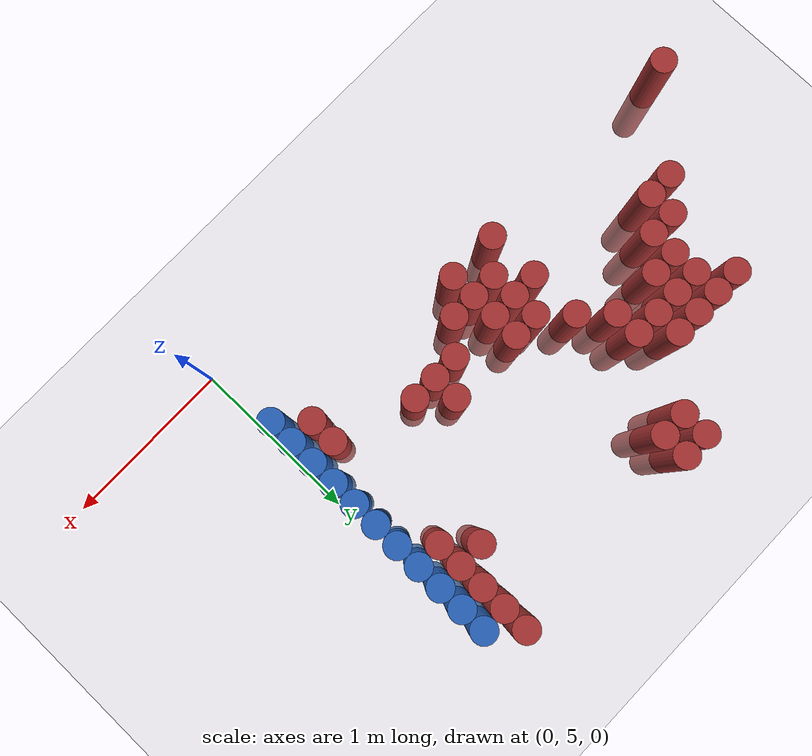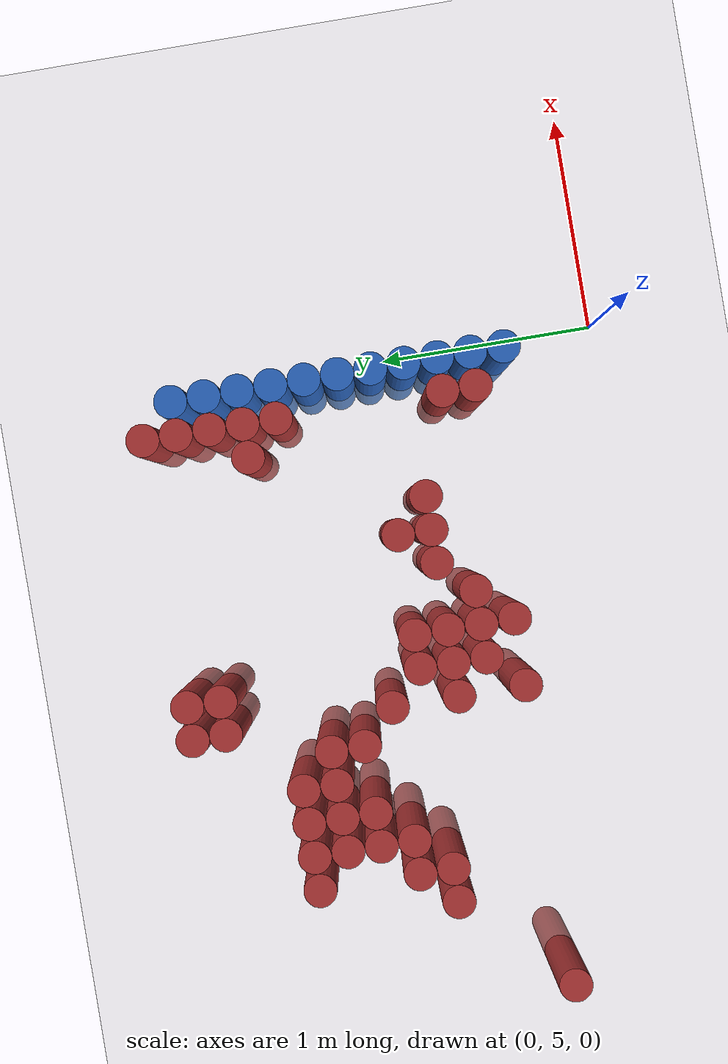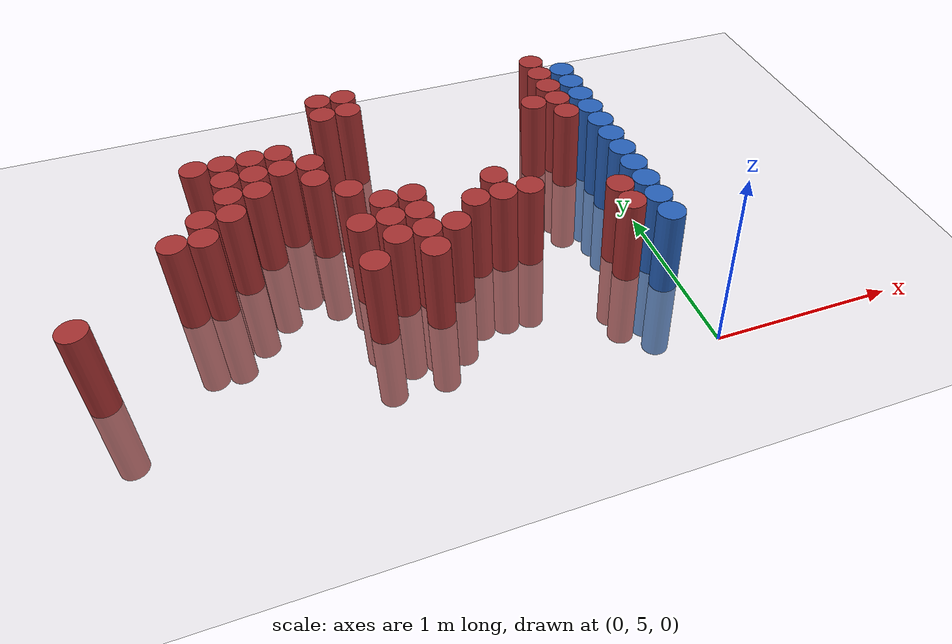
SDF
<sdf version="1.6">
 <world name="default">
  <model name="ground_plane">
   <static>1</static>
   <link name="link">
    <collision name="collision">
     <geometry><plane><normal>0 0 1</normal><size>100 100</size></plane></geometry>
     <surface><friction><ode><mu>100</mu><mu2>50</mu2></ode></friction></surface>
    </collision>
    <visual name="visual">
     <cast_shadows>0</cast_shadows>
     <geometry><plane><normal>0 0 1</normal><size>100 100</size></plane></geometry>
     <material>
      <script><uri>file://media/materials/scripts/gazebo.material</uri><name>Gazebo/Grey</name></script>
     </material>
    </visual>
   </link>
  </model>
  <model name="unit_cylinder_164">
   <static>1</static>
   <pose>-2.925000 5.625000 0.000000 0.000000 0.000000 0.000000</pose>
   <link name="link">
    <inertial>
     <mass>1</mass>
     <inertia><ixx>0.145833</ixx><ixy>0</ixy><ixz>0</ixz><iyy>0.145833</iyy><iyz>0</iyz><izz>0.125</izz></inertia>
    </inertial>
    <collision name="collision">
     <geometry><cylinder><radius>0.075000</radius><length>1</length></cylinder></geometry>
    </collision>
    <visual name="visual">
     <geometry><cylinder><radius>0.075000</radius><length>1</length></cylinder></geometry>
     <material>
      <ambient>0.648000 0.192000 0.192000 1</ambient>
      <diffuse>0.648000 0.192000 0.192000 1</diffuse>
     </material>
     <material>
      <script><name>Gazebo/Grey</name><uri>file://media/materials/scripts/gazebo.material</uri></script>
     </material>
    </visual>
   </link>
  </model>
  <model name="unit_cylinder_165">
   <static>1</static>
   <pose>-2.475000 6.075000 0.000000 0.000000 0.000000 0.000000</pose>
   <link name="link">
    <inertial>
     <mass>1</mass>
     <inertia><ixx>0.145833</ixx><ixy>0</ixy><ixz>0</ixz><iyy>0.145833</iyy><iyz>0</iyz><izz>0.125</izz></inertia>
    </inertial>
    <collision name="collision">
     <geometry><cylinder><radius>0.075000</radius><length>1</length></cylinder></geometry>
    </collision>
    <visual name="visual">
     <geometry><cylinder><radius>0.075000</radius><length>1</length></cylinder></geometry>
     <material>
      <ambient>0.648000 0.192000 0.192000 1</ambient>
      <diffuse>0.648000 0.192000 0.192000 1</diffuse>
     </material>
     <material>
      <script><name>Gazebo/Grey</name><uri>file://media/materials/scripts/gazebo.material</uri></script>
     </material>
    </visual>
   </link>
  </model>
  <model name="unit_cylinder_166">
   <static>1</static>
   <pose>-2.325000 6.075000 0.000000 0.000000 0.000000 0.000000</pose>
   <link name="link">
    <inertial>
     <mass>1</mass>
     <inertia><ixx>0.145833</ixx><ixy>0</ixy><ixz>0</ixz><iyy>0.145833</iyy><iyz>0</iyz><izz>0.125</izz></inertia>
    </inertial>
    <collision name="collision">
     <geometry><cylinder><radius>0.075000</radius><length>1</length></cylinder></geometry>
    </collision>
    <visual name="visual">
     <geometry><cylinder><radius>0.075000</radius><length>1</length></cylinder></geometry>
     <material>
      <ambient>0.648000 0.192000 0.192000 1</ambient>
      <diffuse>0.648000 0.192000 0.192000 1</diffuse>
     </material>
     <material>
      <script><name>Gazebo/Grey</name><uri>file://media/materials/scripts/gazebo.material</uri></script>
     </material>
    </visual>
   </link>
  </model>
  <model name="unit_cylinder_167">
   <static>1</static>
   <pose>-2.325000 6.225000 0.000000 0.000000 0.000000 0.000000</pose>
   <link name="link">
    <inertial>
     <mass>1</mass>
     <inertia><ixx>0.145833</ixx><ixy>0</ixy><ixz>0</ixz><iyy>0.145833</iyy><iyz>0</iyz><izz>0.125</izz></inertia>
    </inertial>
    <collision name="collision">
     <geometry><cylinder><radius>0.075000</radius><length>1</length></cylinder></geometry>
    </collision>
    <visual name="visual">
     <geometry><cylinder><radius>0.075000</radius><length>1</length></cylinder></geometry>
     <material>
      <ambient>0.648000 0.192000 0.192000 1</ambient>
      <diffuse>0.648000 0.192000 0.192000 1</diffuse>
     </material>
     <material>
      <script><name>Gazebo/Grey</name><uri>file://media/materials/scripts/gazebo.material</uri></script>
     </material>
    </visual>
   </link>
  </model>
  <model name="unit_cylinder_168">
   <static>1</static>
   <pose>-2.325000 6.675000 0.000000 0.000000 0.000000 0.000000</pose>
   <link name="link">
    <inertial>
     <mass>1</mass>
     <inertia><ixx>0.145833</ixx><ixy>0</ixy><ixz>0</ixz><iyy>0.145833</iyy><iyz>0</iyz><izz>0.125</izz></inertia>
    </inertial>
    <collision name="collision">
     <geometry><cylinder><radius>0.075000</radius><length>1</length></cylinder></geometry>
    </collision>
    <visual name="visual">
     <geometry><cylinder><radius>0.075000</radius><length>1</length></cylinder></geometry>
     <material>
      <ambient>0.648000 0.192000 0.192000 1</ambient>
      <diffuse>0.648000 0.192000 0.192000 1</diffuse>
     </material>
     <material>
      <script><name>Gazebo/Grey</name><uri>file://media/materials/scripts/gazebo.material</uri></script>
     </material>
    </visual>
   </link>
  </model>
  <model name="unit_cylinder_169">
   <static>1</static>
   <pose>-2.175000 6.225000 0.000000 0.000000 0.000000 0.000000</pose>
   <link name="link">
    <inertial>
     <mass>1</mass>
     <inertia><ixx>0.145833</ixx><ixy>0</ixy><ixz>0</ixz><iyy>0.145833</iyy><iyz>0</iyz><izz>0.125</izz></inertia>
    </inertial>
    <collision name="collision">
     <geometry><cylinder><radius>0.075000</radius><length>1</length></cylinder></geometry>
    </collision>
    <visual name="visual">
     <geometry><cylinder><radius>0.075000</radius><length>1</length></cylinder></geometry>
     <material>
      <ambient>0.648000 0.192000 0.192000 1</ambient>
      <diffuse>0.648000 0.192000 0.192000 1</diffuse>
     </material>
     <material>
      <script><name>Gazebo/Grey</name><uri>file://media/materials/scripts/gazebo.material</uri></script>
     </material>
    </visual>
   </link>
  </model>
  <model name="unit_cylinder_170">
   <static>1</static>
   <pose>-2.175000 6.375000 0.000000 0.000000 0.000000 0.000000</pose>
   <link name="link">
    <inertial>
     <mass>1</mass>
     <inertia><ixx>0.145833</ixx><ixy>0</ixy><ixz>0</ixz><iyy>0.145833</iyy><iyz>0</iyz><izz>0.125</izz></inertia>
    </inertial>
    <collision name="collision">
     <geometry><cylinder><radius>0.075000</radius><length>1</length></cylinder></geometry>
    </collision>
    <visual name="visual">
     <geometry><cylinder><radius>0.075000</radius><length>1</length></cylinder></geometry>
     <material>
      <ambient>0.648000 0.192000 0.192000 1</ambient>
      <diffuse>0.648000 0.192000 0.192000 1</diffuse>
     </material>
     <material>
      <script><name>Gazebo/Grey</name><uri>file://media/materials/scripts/gazebo.material</uri></script>
     </material>
    </visual>
   </link>
  </model>
  <model name="unit_cylinder_171">
   <static>1</static>
   <pose>-2.175000 6.525000 0.000000 0.000000 0.000000 0.000000</pose>
   <link name="link">
    <inertial>
     <mass>1</mass>
     <inertia><ixx>0.145833</ixx><ixy>0</ixy><ixz>0</ixz><iyy>0.145833</iyy><iyz>0</iyz><izz>0.125</izz></inertia>
    </inertial>
    <collision name="collision">
     <geometry><cylinder><radius>0.075000</radius><length>1</length></cylinder></geometry>
    </collision>
    <visual name="visual">
     <geometry><cylinder><radius>0.075000</radius><length>1</length></cylinder></geometry>
     <material>
      <ambient>0.648000 0.192000 0.192000 1</ambient>
      <diffuse>0.648000 0.192000 0.192000 1</diffuse>
     </material>
     <material>
      <script><name>Gazebo/Grey</name><uri>file://media/materials/scripts/gazebo.material</uri></script>
     </material>
    </visual>
   </link>
  </model>
  <model name="unit_cylinder_172">
   <static>1</static>
   <pose>-2.175000 6.675000 0.000000 0.000000 0.000000 0.000000</pose>
   <link name="link">
    <inertial>
     <mass>1</mass>
     <inertia><ixx>0.145833</ixx><ixy>0</ixy><ixz>0</ixz><iyy>0.145833</iyy><iyz>0</iyz><izz>0.125</izz></inertia>
    </inertial>
    <collision name="collision">
     <geometry><cylinder><radius>0.075000</radius><length>1</length></cylinder></geometry>
    </collision>
    <visual name="visual">
     <geometry><cylinder><radius>0.075000</radius><length>1</length></cylinder></geometry>
     <material>
      <ambient>0.648000 0.192000 0.192000 1</ambient>
      <diffuse>0.648000 0.192000 0.192000 1</diffuse>
     </material>
     <material>
      <script><name>Gazebo/Grey</name><uri>file://media/materials/scripts/gazebo.material</uri></script>
     </material>
    </visual>
   </link>
  </model>
  <model name="unit_cylinder_173">
   <static>1</static>
   <pose>-2.025000 6.375000 0.000000 0.000000 0.000000 0.000000</pose>
   <link name="link">
    <inertial>
     <mass>1</mass>
     <inertia><ixx>0.145833</ixx><ixy>0</ixy><ixz>0</ixz><iyy>0.145833</iyy><iyz>0</iyz><izz>0.125</izz></inertia>
    </inertial>
    <collision name="collision">
     <geometry><cylinder><radius>0.075000</radius><length>1</length></cylinder></geometry>
    </collision>
    <visual name="visual">
     <geometry><cylinder><radius>0.075000</radius><length>1</length></cylinder></geometry>
     <material>
      <ambient>0.648000 0.192000 0.192000 1</ambient>
      <diffuse>0.648000 0.192000 0.192000 1</diffuse>
     </material>
     <material>
      <script><name>Gazebo/Grey</name><uri>file://media/materials/scripts/gazebo.material</uri></script>
     </material>
    </visual>
   </link>
  </model>
  <model name="unit_cylinder_174">
   <static>1</static>
   <pose>-2.025000 6.525000 0.000000 0.000000 0.000000 0.000000</pose>
   <link name="link">
    <inertial>
     <mass>1</mass>
     <inertia><ixx>0.145833</ixx><ixy>0</ixy><ixz>0</ixz><iyy>0.145833</iyy><iyz>0</iyz><izz>0.125</izz></inertia>
    </inertial>
    <collision name="collision">
     <geometry><cylinder><radius>0.075000</radius><length>1</length></cylinder></geometry>
    </collision>
    <visual name="visual">
     <geometry><cylinder><radius>0.075000</radius><length>1</length></cylinder></geometry>
     <material>
      <ambient>0.648000 0.192000 0.192000 1</ambient>
      <diffuse>0.648000 0.192000 0.192000 1</diffuse>
     </material>
     <material>
      <script><name>Gazebo/Grey</name><uri>file://media/materials/scripts/gazebo.material</uri></script>
     </material>
    </visual>
   </link>
  </model>
  <model name="unit_cylinder_175">
   <static>1</static>
   <pose>-2.025000 6.675000 0.000000 0.000000 0.000000 0.000000</pose>
   <link name="link">
    <inertial>
     <mass>1</mass>
     <inertia><ixx>0.145833</ixx><ixy>0</ixy><ixz>0</ixz><iyy>0.145833</iyy><iyz>0</iyz><izz>0.125</izz></inertia>
    </inertial>
    <collision name="collision">
     <geometry><cylinder><radius>0.075000</radius><length>1</length></cylinder></geometry>
    </collision>
    <visual name="visual">
     <geometry><cylinder><radius>0.075000</radius><length>1</length></cylinder></geometry>
     <material>
      <ambient>0.648000 0.192000 0.192000 1</ambient>
      <diffuse>0.648000 0.192000 0.192000 1</diffuse>
     </material>
     <material>
      <script><name>Gazebo/Grey</name><uri>file://media/materials/scripts/gazebo.material</uri></script>
     </material>
    </visual>
   </link>
  </model>
  <model name="unit_cylinder_176">
   <static>1</static>
   <pose>-1.875000 6.525000 0.000000 0.000000 0.000000 0.000000</pose>
   <link name="link">
    <inertial>
     <mass>1</mass>
     <inertia><ixx>0.145833</ixx><ixy>0</ixy><ixz>0</ixz><iyy>0.145833</iyy><iyz>0</iyz><izz>0.125</izz></inertia>
    </inertial>
    <collision name="collision">
     <geometry><cylinder><radius>0.075000</radius><length>1</length></cylinder></geometry>
    </collision>
    <visual name="visual">
     <geometry><cylinder><radius>0.075000</radius><length>1</length></cylinder></geometry>
     <material>
      <ambient>0.648000 0.192000 0.192000 1</ambient>
      <diffuse>0.648000 0.192000 0.192000 1</diffuse>
     </material>
     <material>
      <script><name>Gazebo/Grey</name><uri>file://media/materials/scripts/gazebo.material</uri></script>
     </material>
    </visual>
   </link>
  </model>
  <model name="unit_cylinder_177">
   <static>1</static>
   <pose>-1.875000 6.675000 0.000000 0.000000 0.000000 0.000000</pose>
   <link name="link">
    <inertial>
     <mass>1</mass>
     <inertia><ixx>0.145833</ixx><ixy>0</ixy><ixz>0</ixz><iyy>0.145833</iyy><iyz>0</iyz><izz>0.125</izz></inertia>
    </inertial>
    <collision name="collision">
     <geometry><cylinder><radius>0.075000</radius><length>1</length></cylinder></geometry>
    </collision>
    <visual name="visual">
     <geometry><cylinder><radius>0.075000</radius><length>1</length></cylinder></geometry>
     <material>
      <ambient>0.648000 0.192000 0.192000 1</ambient>
      <diffuse>0.648000 0.192000 0.192000 1</diffuse>
     </material>
     <material>
      <script><name>Gazebo/Grey</name><uri>file://media/materials/scripts/gazebo.material</uri></script>
     </material>
    </visual>
   </link>
  </model>
  <model name="unit_cylinder_180">
   <static>1</static>
   <pose>-1.725000 6.375000 0.000000 0.000000 0.000000 0.000000</pose>
   <link name="link">
    <inertial>
     <mass>1</mass>
     <inertia><ixx>0.145833</ixx><ixy>0</ixy><ixz>0</ixz><iyy>0.145833</iyy><iyz>0</iyz><izz>0.125</izz></inertia>
    </inertial>
    <collision name="collision">
     <geometry><cylinder><radius>0.075000</radius><length>1</length></cylinder></geometry>
    </collision>
    <visual name="visual">
     <geometry><cylinder><radius>0.075000</radius><length>1</length></cylinder></geometry>
     <material>
      <ambient>0.648000 0.192000 0.192000 1</ambient>
      <diffuse>0.648000 0.192000 0.192000 1</diffuse>
     </material>
     <material>
      <script><name>Gazebo/Grey</name><uri>file://media/materials/scripts/gazebo.material</uri></script>
     </material>
    </visual>
   </link>
  </model>
  <model name="unit_cylinder_181">
   <static>1</static>
   <pose>-1.725000 6.525000 0.000000 0.000000 0.000000 0.000000</pose>
   <link name="link">
    <inertial>
     <mass>1</mass>
     <inertia><ixx>0.145833</ixx><ixy>0</ixy><ixz>0</ixz><iyy>0.145833</iyy><iyz>0</iyz><izz>0.125</izz></inertia>
    </inertial>
    <collision name="collision">
     <geometry><cylinder><radius>0.075000</radius><length>1</length></cylinder></geometry>
    </collision>
    <visual name="visual">
     <geometry><cylinder><radius>0.075000</radius><length>1</length></cylinder></geometry>
     <material>
      <ambient>0.648000 0.192000 0.192000 1</ambient>
      <diffuse>0.648000 0.192000 0.192000 1</diffuse>
     </material>
     <material>
      <script><name>Gazebo/Grey</name><uri>file://media/materials/scripts/gazebo.material</uri></script>
     </material>
    </visual>
   </link>
  </model>
  <model name="unit_cylinder_184">
   <static>1</static>
   <pose>-1.575000 5.625000 0.000000 0.000000 0.000000 0.000000</pose>
   <link name="link">
    <inertial>
     <mass>1</mass>
     <inertia><ixx>0.145833</ixx><ixy>0</ixy><ixz>0</ixz><iyy>0.145833</iyy><iyz>0</iyz><izz>0.125</izz></inertia>
    </inertial>
    <collision name="collision">
     <geometry><cylinder><radius>0.075000</radius><length>1</length></cylinder></geometry>
    </collision>
    <visual name="visual">
     <geometry><cylinder><radius>0.075000</radius><length>1</length></cylinder></geometry>
     <material>
      <ambient>0.648000 0.192000 0.192000 1</ambient>
      <diffuse>0.648000 0.192000 0.192000 1</diffuse>
     </material>
     <material>
      <script><name>Gazebo/Grey</name><uri>file://media/materials/scripts/gazebo.material</uri></script>
     </material>
    </visual>
   </link>
  </model>
  <model name="unit_cylinder_185">
   <static>1</static>
   <pose>-1.575000 5.925000 0.000000 0.000000 0.000000 0.000000</pose>
   <link name="link">
    <inertial>
     <mass>1</mass>
     <inertia><ixx>0.145833</ixx><ixy>0</ixy><ixz>0</ixz><iyy>0.145833</iyy><iyz>0</iyz><izz>0.125</izz></inertia>
    </inertial>
    <collision name="collision">
     <geometry><cylinder><radius>0.075000</radius><length>1</length></cylinder></geometry>
    </collision>
    <visual name="visual">
     <geometry><cylinder><radius>0.075000</radius><length>1</length></cylinder></geometry>
     <material>
      <ambient>0.648000 0.192000 0.192000 1</ambient>
      <diffuse>0.648000 0.192000 0.192000 1</diffuse>
     </material>
     <material>
      <script><name>Gazebo/Grey</name><uri>file://media/materials/scripts/gazebo.material</uri></script>
     </material>
    </visual>
   </link>
  </model>
  <model name="unit_cylinder_186">
   <static>1</static>
   <pose>-1.575000 6.225000 0.000000 0.000000 0.000000 0.000000</pose>
   <link name="link">
    <inertial>
     <mass>1</mass>
     <inertia><ixx>0.145833</ixx><ixy>0</ixy><ixz>0</ixz><iyy>0.145833</iyy><iyz>0</iyz><izz>0.125</izz></inertia>
    </inertial>
    <collision name="collision">
     <geometry><cylinder><radius>0.075000</radius><length>1</length></cylinder></geometry>
    </collision>
    <visual name="visual">
     <geometry><cylinder><radius>0.075000</radius><length>1</length></cylinder></geometry>
     <material>
      <ambient>0.648000 0.192000 0.192000 1</ambient>
      <diffuse>0.648000 0.192000 0.192000 1</diffuse>
     </material>
     <material>
      <script><name>Gazebo/Grey</name><uri>file://media/materials/scripts/gazebo.material</uri></script>
     </material>
    </visual>
   </link>
  </model>
  <model name="unit_cylinder_187">
   <static>1</static>
   <pose>-1.575000 6.975000 0.000000 0.000000 0.000000 0.000000</pose>
   <link name="link">
    <inertial>
     <mass>1</mass>
     <inertia><ixx>0.145833</ixx><ixy>0</ixy><ixz>0</ixz><iyy>0.145833</iyy><iyz>0</iyz><izz>0.125</izz></inertia>
    </inertial>
    <collision name="collision">
     <geometry><cylinder><radius>0.075000</radius><length>1</length></cylinder></geometry>
    </collision>
    <visual name="visual">
     <geometry><cylinder><radius>0.075000</radius><length>1</length></cylinder></geometry>
     <material>
      <ambient>0.648000 0.192000 0.192000 1</ambient>
      <diffuse>0.648000 0.192000 0.192000 1</diffuse>
     </material>
     <material>
      <script><name>Gazebo/Grey</name><uri>file://media/materials/scripts/gazebo.material</uri></script>
     </material>
    </visual>
   </link>
  </model>
  <model name="unit_cylinder_188">
   <static>1</static>
   <pose>-1.575000 7.125000 0.000000 0.000000 0.000000 0.000000</pose>
   <link name="link">
    <inertial>
     <mass>1</mass>
     <inertia><ixx>0.145833</ixx><ixy>0</ixy><ixz>0</ixz><iyy>0.145833</iyy><iyz>0</iyz><izz>0.125</izz></inertia>
    </inertial>
    <collision name="collision">
     <geometry><cylinder><radius>0.075000</radius><length>1</length></cylinder></geometry>
    </collision>
    <visual name="visual">
     <geometry><cylinder><radius>0.075000</radius><length>1</length></cylinder></geometry>
     <material>
      <ambient>0.648000 0.192000 0.192000 1</ambient>
      <diffuse>0.648000 0.192000 0.192000 1</diffuse>
     </material>
     <material>
      <script><name>Gazebo/Grey</name><uri>file://media/materials/scripts/gazebo.material</uri></script>
     </material>
    </visual>
   </link>
  </model>
  <model name="unit_cylinder_194">
   <static>1</static>
   <pose>-1.425000 5.775000 0.000000 0.000000 0.000000 0.000000</pose>
   <link name="link">
    <inertial>
     <mass>1</mass>
     <inertia><ixx>0.145833</ixx><ixy>0</ixy><ixz>0</ixz><iyy>0.145833</iyy><iyz>0</iyz><izz>0.125</izz></inertia>
    </inertial>
    <collision name="collision">
     <geometry><cylinder><radius>0.075000</radius><length>1</length></cylinder></geometry>
    </collision>
    <visual name="visual">
     <geometry><cylinder><radius>0.075000</radius><length>1</length></cylinder></geometry>
     <material>
      <ambient>0.648000 0.192000 0.192000 1</ambient>
      <diffuse>0.648000 0.192000 0.192000 1</diffuse>
     </material>
     <material>
      <script><name>Gazebo/Grey</name><uri>file://media/materials/scripts/gazebo.material</uri></script>
     </material>
    </visual>
   </link>
  </model>
  <model name="unit_cylinder_195">
   <static>1</static>
   <pose>-1.425000 5.925000 0.000000 0.000000 0.000000 0.000000</pose>
   <link name="link">
    <inertial>
     <mass>1</mass>
     <inertia><ixx>0.145833</ixx><ixy>0</ixy><ixz>0</ixz><iyy>0.145833</iyy><iyz>0</iyz><izz>0.125</izz></inertia>
    </inertial>
    <collision name="collision">
     <geometry><cylinder><radius>0.075000</radius><length>1</length></cylinder></geometry>
    </collision>
    <visual name="visual">
     <geometry><cylinder><radius>0.075000</radius><length>1</length></cylinder></geometry>
     <material>
      <ambient>0.648000 0.192000 0.192000 1</ambient>
      <diffuse>0.648000 0.192000 0.192000 1</diffuse>
     </material>
     <material>
      <script><name>Gazebo/Grey</name><uri>file://media/materials/scripts/gazebo.material</uri></script>
     </material>
    </visual>
   </link>
  </model>
  <model name="unit_cylinder_196">
   <static>1</static>
   <pose>-1.425000 6.075000 0.000000 0.000000 0.000000 0.000000</pose>
   <link name="link">
    <inertial>
     <mass>1</mass>
     <inertia><ixx>0.145833</ixx><ixy>0</ixy><ixz>0</ixz><iyy>0.145833</iyy><iyz>0</iyz><izz>0.125</izz></inertia>
    </inertial>
    <collision name="collision">
     <geometry><cylinder><radius>0.075000</radius><length>1</length></cylinder></geometry>
    </collision>
    <visual name="visual">
     <geometry><cylinder><radius>0.075000</radius><length>1</length></cylinder></geometry>
     <material>
      <ambient>0.648000 0.192000 0.192000 1</ambient>
      <diffuse>0.648000 0.192000 0.192000 1</diffuse>
     </material>
     <material>
      <script><name>Gazebo/Grey</name><uri>file://media/materials/scripts/gazebo.material</uri></script>
     </material>
    </visual>
   </link>
  </model>
  <model name="unit_cylinder_197">
   <static>1</static>
   <pose>-1.425000 6.975000 0.000000 0.000000 0.000000 0.000000</pose>
   <link name="link">
    <inertial>
     <mass>1</mass>
     <inertia><ixx>0.145833</ixx><ixy>0</ixy><ixz>0</ixz><iyy>0.145833</iyy><iyz>0</iyz><izz>0.125</izz></inertia>
    </inertial>
    <collision name="collision">
     <geometry><cylinder><radius>0.075000</radius><length>1</length></cylinder></geometry>
    </collision>
    <visual name="visual">
     <geometry><cylinder><radius>0.075000</radius><length>1</length></cylinder></geometry>
     <material>
      <ambient>0.648000 0.192000 0.192000 1</ambient>
      <diffuse>0.648000 0.192000 0.192000 1</diffuse>
     </material>
     <material>
      <script><name>Gazebo/Grey</name><uri>file://media/materials/scripts/gazebo.material</uri></script>
     </material>
    </visual>
   </link>
  </model>
  <model name="unit_cylinder_198">
   <static>1</static>
   <pose>-1.425000 7.125000 0.000000 0.000000 0.000000 0.000000</pose>
   <link name="link">
    <inertial>
     <mass>1</mass>
     <inertia><ixx>0.145833</ixx><ixy>0</ixy><ixz>0</ixz><iyy>0.145833</iyy><iyz>0</iyz><izz>0.125</izz></inertia>
    </inertial>
    <collision name="collision">
     <geometry><cylinder><radius>0.075000</radius><length>1</length></cylinder></geometry>
    </collision>
    <visual name="visual">
     <geometry><cylinder><radius>0.075000</radius><length>1</length></cylinder></geometry>
     <material>
      <ambient>0.648000 0.192000 0.192000 1</ambient>
      <diffuse>0.648000 0.192000 0.192000 1</diffuse>
     </material>
     <material>
      <script><name>Gazebo/Grey</name><uri>file://media/materials/scripts/gazebo.material</uri></script>
     </material>
    </visual>
   </link>
  </model>
  <model name="unit_cylinder_202">
   <static>1</static>
   <pose>-1.275000 5.625000 0.000000 0.000000 0.000000 0.000000</pose>
   <link name="link">
    <inertial>
     <mass>1</mass>
     <inertia><ixx>0.145833</ixx><ixy>0</ixy><ixz>0</ixz><iyy>0.145833</iyy><iyz>0</iyz><izz>0.125</izz></inertia>
    </inertial>
    <collision name="collision">
     <geometry><cylinder><radius>0.075000</radius><length>1</length></cylinder></geometry>
    </collision>
    <visual name="visual">
     <geometry><cylinder><radius>0.075000</radius><length>1</length></cylinder></geometry>
     <material>
      <ambient>0.648000 0.192000 0.192000 1</ambient>
      <diffuse>0.648000 0.192000 0.192000 1</diffuse>
     </material>
     <material>
      <script><name>Gazebo/Grey</name><uri>file://media/materials/scripts/gazebo.material</uri></script>
     </material>
    </visual>
   </link>
  </model>
  <model name="unit_cylinder_203">
   <static>1</static>
   <pose>-1.275000 5.775000 0.000000 0.000000 0.000000 0.000000</pose>
   <link name="link">
    <inertial>
     <mass>1</mass>
     <inertia><ixx>0.145833</ixx><ixy>0</ixy><ixz>0</ixz><iyy>0.145833</iyy><iyz>0</iyz><izz>0.125</izz></inertia>
    </inertial>
    <collision name="collision">
     <geometry><cylinder><radius>0.075000</radius><length>1</length></cylinder></geometry>
    </collision>
    <visual name="visual">
     <geometry><cylinder><radius>0.075000</radius><length>1</length></cylinder></geometry>
     <material>
      <ambient>0.648000 0.192000 0.192000 1</ambient>
      <diffuse>0.648000 0.192000 0.192000 1</diffuse>
     </material>
     <material>
      <script><name>Gazebo/Grey</name><uri>file://media/materials/scripts/gazebo.material</uri></script>
     </material>
    </visual>
   </link>
  </model>
  <model name="unit_cylinder_204">
   <static>1</static>
   <pose>-1.275000 5.925000 0.000000 0.000000 0.000000 0.000000</pose>
   <link name="link">
    <inertial>
     <mass>1</mass>
     <inertia><ixx>0.145833</ixx><ixy>0</ixy><ixz>0</ixz><iyy>0.145833</iyy><iyz>0</iyz><izz>0.125</izz></inertia>
    </inertial>
    <collision name="collision">
     <geometry><cylinder><radius>0.075000</radius><length>1</length></cylinder></geometry>
    </collision>
    <visual name="visual">
     <geometry><cylinder><radius>0.075000</radius><length>1</length></cylinder></geometry>
     <material>
      <ambient>0.648000 0.192000 0.192000 1</ambient>
      <diffuse>0.648000 0.192000 0.192000 1</diffuse>
     </material>
     <material>
      <script><name>Gazebo/Grey</name><uri>file://media/materials/scripts/gazebo.material</uri></script>
     </material>
    </visual>
   </link>
  </model>
  <model name="unit_cylinder_205">
   <static>1</static>
   <pose>-1.275000 6.075000 0.000000 0.000000 0.000000 0.000000</pose>
   <link name="link">
    <inertial>
     <mass>1</mass>
     <inertia><ixx>0.145833</ixx><ixy>0</ixy><ixz>0</ixz><iyy>0.145833</iyy><iyz>0</iyz><izz>0.125</izz></inertia>
    </inertial>
    <collision name="collision">
     <geometry><cylinder><radius>0.075000</radius><length>1</length></cylinder></geometry>
    </collision>
    <visual name="visual">
     <geometry><cylinder><radius>0.075000</radius><length>1</length></cylinder></geometry>
     <material>
      <ambient>0.648000 0.192000 0.192000 1</ambient>
      <diffuse>0.648000 0.192000 0.192000 1</diffuse>
     </material>
     <material>
      <script><name>Gazebo/Grey</name><uri>file://media/materials/scripts/gazebo.material</uri></script>
     </material>
    </visual>
   </link>
  </model>
  <model name="unit_cylinder_210">
   <static>1</static>
   <pose>-1.125000 5.775000 0.000000 0.000000 0.000000 0.000000</pose>
   <link name="link">
    <inertial>
     <mass>1</mass>
     <inertia><ixx>0.145833</ixx><ixy>0</ixy><ixz>0</ixz><iyy>0.145833</iyy><iyz>0</iyz><izz>0.125</izz></inertia>
    </inertial>
    <collision name="collision">
     <geometry><cylinder><radius>0.075000</radius><length>1</length></cylinder></geometry>
    </collision>
    <visual name="visual">
     <geometry><cylinder><radius>0.075000</radius><length>1</length></cylinder></geometry>
     <material>
      <ambient>0.648000 0.192000 0.192000 1</ambient>
      <diffuse>0.648000 0.192000 0.192000 1</diffuse>
     </material>
     <material>
      <script><name>Gazebo/Grey</name><uri>file://media/materials/scripts/gazebo.material</uri></script>
     </material>
    </visual>
   </link>
  </model>
  <model name="unit_cylinder_215">
   <static>1</static>
   <pose>-0.975000 5.925000 0.000000 0.000000 0.000000 0.000000</pose>
   <link name="link">
    <inertial>
     <mass>1</mass>
     <inertia><ixx>0.145833</ixx><ixy>0</ixy><ixz>0</ixz><iyy>0.145833</iyy><iyz>0</iyz><izz>0.125</izz></inertia>
    </inertial>
    <collision name="collision">
     <geometry><cylinder><radius>0.075000</radius><length>1</length></cylinder></geometry>
    </collision>
    <visual name="visual">
     <geometry><cylinder><radius>0.075000</radius><length>1</length></cylinder></geometry>
     <material>
      <ambient>0.648000 0.192000 0.192000 1</ambient>
      <diffuse>0.648000 0.192000 0.192000 1</diffuse>
     </material>
     <material>
      <script><name>Gazebo/Grey</name><uri>file://media/materials/scripts/gazebo.material</uri></script>
     </material>
    </visual>
   </link>
  </model>
  <model name="unit_cylinder_219">
   <static>1</static>
   <pose>-0.825000 5.925000 0.000000 0.000000 0.000000 0.000000</pose>
   <link name="link">
    <inertial>
     <mass>1</mass>
     <inertia><ixx>0.145833</ixx><ixy>0</ixy><ixz>0</ixz><iyy>0.145833</iyy><iyz>0</iyz><izz>0.125</izz></inertia>
    </inertial>
    <collision name="collision">
     <geometry><cylinder><radius>0.075000</radius><length>1</length></cylinder></geometry>
    </collision>
    <visual name="visual">
     <geometry><cylinder><radius>0.075000</radius><length>1</length></cylinder></geometry>
     <material>
      <ambient>0.648000 0.192000 0.192000 1</ambient>
      <diffuse>0.648000 0.192000 0.192000 1</diffuse>
     </material>
     <material>
      <script><name>Gazebo/Grey</name><uri>file://media/materials/scripts/gazebo.material</uri></script>
     </material>
    </visual>
   </link>
  </model>
  <model name="unit_cylinder_220">
   <static>1</static>
   <pose>-0.825000 6.075000 0.000000 0.000000 0.000000 0.000000</pose>
   <link name="link">
    <inertial>
     <mass>1</mass>
     <inertia><ixx>0.145833</ixx><ixy>0</ixy><ixz>0</ixz><iyy>0.145833</iyy><iyz>0</iyz><izz>0.125</izz></inertia>
    </inertial>
    <collision name="collision">
     <geometry><cylinder><radius>0.075000</radius><length>1</length></cylinder></geometry>
    </collision>
    <visual name="visual">
     <geometry><cylinder><radius>0.075000</radius><length>1</length></cylinder></geometry>
     <material>
      <ambient>0.648000 0.192000 0.192000 1</ambient>
      <diffuse>0.648000 0.192000 0.192000 1</diffuse>
     </material>
     <material>
      <script><name>Gazebo/Grey</name><uri>file://media/materials/scripts/gazebo.material</uri></script>
     </material>
    </visual>
   </link>
  </model>
  <model name="unit_cylinder_221">
   <static>1</static>
   <pose>-0.675000 5.925000 0.000000 0.000000 0.000000 0.000000</pose>
   <link name="link">
    <inertial>
     <mass>1</mass>
     <inertia><ixx>0.145833</ixx><ixy>0</ixy><ixz>0</ixz><iyy>0.145833</iyy><iyz>0</iyz><izz>0.125</izz></inertia>
    </inertial>
    <collision name="collision">
     <geometry><cylinder><radius>0.075000</radius><length>1</length></cylinder></geometry>
    </collision>
    <visual name="visual">
     <geometry><cylinder><radius>0.075000</radius><length>1</length></cylinder></geometry>
     <material>
      <ambient>0.648000 0.192000 0.192000 1</ambient>
      <diffuse>0.648000 0.192000 0.192000 1</diffuse>
     </material>
     <material>
      <script><name>Gazebo/Grey</name><uri>file://media/materials/scripts/gazebo.material</uri></script>
     </material>
    </visual>
   </link>
  </model>
  <model name="unit_cylinder_222">
   <static>1</static>
   <pose>-0.375000 6.675000 0.000000 0.000000 0.000000 0.000000</pose>
   <link name="link">
    <inertial>
     <mass>1</mass>
     <inertia><ixx>0.145833</ixx><ixy>0</ixy><ixz>0</ixz><iyy>0.145833</iyy><iyz>0</iyz><izz>0.125</izz></inertia>
    </inertial>
    <collision name="collision">
     <geometry><cylinder><radius>0.075000</radius><length>1</length></cylinder></geometry>
    </collision>
    <visual name="visual">
     <geometry><cylinder><radius>0.075000</radius><length>1</length></cylinder></geometry>
     <material>
      <ambient>0.648000 0.192000 0.192000 1</ambient>
      <diffuse>0.648000 0.192000 0.192000 1</diffuse>
     </material>
     <material>
      <script><name>Gazebo/Grey</name><uri>file://media/materials/scripts/gazebo.material</uri></script>
     </material>
    </visual>
   </link>
  </model>
  <model name="unit_cylinder_224">
   <static>1</static>
   <pose>-0.225000 5.625000 0.000000 0.000000 0.000000 0.000000</pose>
   <link name="link">
    <inertial>
     <mass>1</mass>
     <inertia><ixx>0.145833</ixx><ixy>0</ixy><ixz>0</ixz><iyy>0.145833</iyy><iyz>0</iyz><izz>0.125</izz></inertia>
    </inertial>
    <collision name="collision">
     <geometry><cylinder><radius>0.075000</radius><length>1</length></cylinder></geometry>
    </collision>
    <visual name="visual">
     <geometry><cylinder><radius>0.075000</radius><length>1</length></cylinder></geometry>
     <material>
      <ambient>0.648000 0.192000 0.192000 1</ambient>
      <diffuse>0.648000 0.192000 0.192000 1</diffuse>
     </material>
     <material>
      <script><name>Gazebo/Grey</name><uri>file://media/materials/scripts/gazebo.material</uri></script>
     </material>
    </visual>
   </link>
  </model>
  <model name="unit_cylinder_225">
   <static>1</static>
   <pose>-0.225000 5.775000 0.000000 0.000000 0.000000 0.000000</pose>
   <link name="link">
    <inertial>
     <mass>1</mass>
     <inertia><ixx>0.145833</ixx><ixy>0</ixy><ixz>0</ixz><iyy>0.145833</iyy><iyz>0</iyz><izz>0.125</izz></inertia>
    </inertial>
    <collision name="collision">
     <geometry><cylinder><radius>0.075000</radius><length>1</length></cylinder></geometry>
    </collision>
    <visual name="visual">
     <geometry><cylinder><radius>0.075000</radius><length>1</length></cylinder></geometry>
     <material>
      <ambient>0.648000 0.192000 0.192000 1</ambient>
      <diffuse>0.648000 0.192000 0.192000 1</diffuse>
     </material>
     <material>
      <script><name>Gazebo/Grey</name><uri>file://media/materials/scripts/gazebo.material</uri></script>
     </material>
    </visual>
   </link>
  </model>
  <model name="unit_cylinder_226">
   <static>1</static>
   <pose>-0.225000 6.525000 0.000000 0.000000 0.000000 0.000000</pose>
   <link name="link">
    <inertial>
     <mass>1</mass>
     <inertia><ixx>0.145833</ixx><ixy>0</ixy><ixz>0</ixz><iyy>0.145833</iyy><iyz>0</iyz><izz>0.125</izz></inertia>
    </inertial>
    <collision name="collision">
     <geometry><cylinder><radius>0.075000</radius><length>1</length></cylinder></geometry>
    </collision>
    <visual name="visual">
     <geometry><cylinder><radius>0.075000</radius><length>1</length></cylinder></geometry>
     <material>
      <ambient>0.648000 0.192000 0.192000 1</ambient>
      <diffuse>0.648000 0.192000 0.192000 1</diffuse>
     </material>
     <material>
      <script><name>Gazebo/Grey</name><uri>file://media/materials/scripts/gazebo.material</uri></script>
     </material>
    </visual>
   </link>
  </model>
  <model name="unit_cylinder_227">
   <static>1</static>
   <pose>-0.225000 6.675000 0.000000 0.000000 0.000000 0.000000</pose>
   <link name="link">
    <inertial>
     <mass>1</mass>
     <inertia><ixx>0.145833</ixx><ixy>0</ixy><ixz>0</ixz><iyy>0.145833</iyy><iyz>0</iyz><izz>0.125</izz></inertia>
    </inertial>
    <collision name="collision">
     <geometry><cylinder><radius>0.075000</radius><length>1</length></cylinder></geometry>
    </collision>
    <visual name="visual">
     <geometry><cylinder><radius>0.075000</radius><length>1</length></cylinder></geometry>
     <material>
      <ambient>0.648000 0.192000 0.192000 1</ambient>
      <diffuse>0.648000 0.192000 0.192000 1</diffuse>
     </material>
     <material>
      <script><name>Gazebo/Grey</name><uri>file://media/materials/scripts/gazebo.material</uri></script>
     </material>
    </visual>
   </link>
  </model>
  <model name="unit_cylinder_228">
   <static>1</static>
   <pose>-0.225000 6.825000 0.000000 0.000000 0.000000 0.000000</pose>
   <link name="link">
    <inertial>
     <mass>1</mass>
     <inertia><ixx>0.145833</ixx><ixy>0</ixy><ixz>0</ixz><iyy>0.145833</iyy><iyz>0</iyz><izz>0.125</izz></inertia>
    </inertial>
    <collision name="collision">
     <geometry><cylinder><radius>0.075000</radius><length>1</length></cylinder></geometry>
    </collision>
    <visual name="visual">
     <geometry><cylinder><radius>0.075000</radius><length>1</length></cylinder></geometry>
     <material>
      <ambient>0.648000 0.192000 0.192000 1</ambient>
      <diffuse>0.648000 0.192000 0.192000 1</diffuse>
     </material>
     <material>
      <script><name>Gazebo/Grey</name><uri>file://media/materials/scripts/gazebo.material</uri></script>
     </material>
    </visual>
   </link>
  </model>
  <model name="unit_cylinder_229">
   <static>1</static>
   <pose>-0.225000 6.975000 0.000000 0.000000 0.000000 0.000000</pose>
   <link name="link">
    <inertial>
     <mass>1</mass>
     <inertia><ixx>0.145833</ixx><ixy>0</ixy><ixz>0</ixz><iyy>0.145833</iyy><iyz>0</iyz><izz>0.125</izz></inertia>
    </inertial>
    <collision name="collision">
     <geometry><cylinder><radius>0.075000</radius><length>1</length></cylinder></geometry>
    </collision>
    <visual name="visual">
     <geometry><cylinder><radius>0.075000</radius><length>1</length></cylinder></geometry>
     <material>
      <ambient>0.648000 0.192000 0.192000 1</ambient>
      <diffuse>0.648000 0.192000 0.192000 1</diffuse>
     </material>
     <material>
      <script><name>Gazebo/Grey</name><uri>file://media/materials/scripts/gazebo.material</uri></script>
     </material>
    </visual>
   </link>
  </model>
  <model name="unit_cylinder_230">
   <static>1</static>
   <pose>-0.225000 7.125000 0.000000 0.000000 0.000000 0.000000</pose>
   <link name="link">
    <inertial>
     <mass>1</mass>
     <inertia><ixx>0.145833</ixx><ixy>0</ixy><ixz>0</ixz><iyy>0.145833</iyy><iyz>0</iyz><izz>0.125</izz></inertia>
    </inertial>
    <collision name="collision">
     <geometry><cylinder><radius>0.075000</radius><length>1</length></cylinder></geometry>
    </collision>
    <visual name="visual">
     <geometry><cylinder><radius>0.075000</radius><length>1</length></cylinder></geometry>
     <material>
      <ambient>0.648000 0.192000 0.192000 1</ambient>
      <diffuse>0.648000 0.192000 0.192000 1</diffuse>
     </material>
     <material>
      <script><name>Gazebo/Grey</name><uri>file://media/materials/scripts/gazebo.material</uri></script>
     </material>
    </visual>
   </link>
  </model>
  <model name="unit_cylinder_241">
   <static>1</static>
   <pose>-0.075000 5.475000 0.000000 0.000000 0.000000 0.000000</pose>
   <link name="link">
    <inertial>
     <mass>1</mass>
     <inertia><ixx>0.145833</ixx><ixy>0</ixy><ixz>0</ixz><iyy>0.145833</iyy><iyz>0</iyz><izz>0.125</izz></inertia>
    </inertial>
    <collision name="collision">
     <geometry><cylinder><radius>0.075000</radius><length>1</length></cylinder></geometry>
    </collision>
    <visual name="visual">
     <geometry><cylinder><radius>0.075000</radius><length>1</length></cylinder></geometry>
     <material>
      <ambient>0.152000 0.379000 0.720000 1</ambient>
      <diffuse>0.152000 0.379000 0.720000 1</diffuse>
     </material>
     <material>
      <script><name>Gazebo/Grey</name><uri>file://media/materials/scripts/gazebo.material</uri></script>
     </material>
    </visual>
   </link>
  </model>
  <model name="unit_cylinder_242">
   <static>1</static>
   <pose>-0.075000 5.625000 0.000000 0.000000 0.000000 0.000000</pose>
   <link name="link">
    <inertial>
     <mass>1</mass>
     <inertia><ixx>0.145833</ixx><ixy>0</ixy><ixz>0</ixz><iyy>0.145833</iyy><iyz>0</iyz><izz>0.125</izz></inertia>
    </inertial>
    <collision name="collision">
     <geometry><cylinder><radius>0.075000</radius><length>1</length></cylinder></geometry>
    </collision>
    <visual name="visual">
     <geometry><cylinder><radius>0.075000</radius><length>1</length></cylinder></geometry>
     <material>
      <ambient>0.152000 0.379000 0.720000 1</ambient>
      <diffuse>0.152000 0.379000 0.720000 1</diffuse>
     </material>
     <material>
      <script><name>Gazebo/Grey</name><uri>file://media/materials/scripts/gazebo.material</uri></script>
     </material>
    </visual>
   </link>
  </model>
  <model name="unit_cylinder_243">
   <static>1</static>
   <pose>-0.075000 5.775000 0.000000 0.000000 0.000000 0.000000</pose>
   <link name="link">
    <inertial>
     <mass>1</mass>
     <inertia><ixx>0.145833</ixx><ixy>0</ixy><ixz>0</ixz><iyy>0.145833</iyy><iyz>0</iyz><izz>0.125</izz></inertia>
    </inertial>
    <collision name="collision">
     <geometry><cylinder><radius>0.075000</radius><length>1</length></cylinder></geometry>
    </collision>
    <visual name="visual">
     <geometry><cylinder><radius>0.075000</radius><length>1</length></cylinder></geometry>
     <material>
      <ambient>0.152000 0.379000 0.720000 1</ambient>
      <diffuse>0.152000 0.379000 0.720000 1</diffuse>
     </material>
     <material>
      <script><name>Gazebo/Grey</name><uri>file://media/materials/scripts/gazebo.material</uri></script>
     </material>
    </visual>
   </link>
  </model>
  <model name="unit_cylinder_244">
   <static>1</static>
   <pose>-0.075000 5.925000 0.000000 0.000000 0.000000 0.000000</pose>
   <link name="link">
    <inertial>
     <mass>1</mass>
     <inertia><ixx>0.145833</ixx><ixy>0</ixy><ixz>0</ixz><iyy>0.145833</iyy><iyz>0</iyz><izz>0.125</izz></inertia>
    </inertial>
    <collision name="collision">
     <geometry><cylinder><radius>0.075000</radius><length>1</length></cylinder></geometry>
    </collision>
    <visual name="visual">
     <geometry><cylinder><radius>0.075000</radius><length>1</length></cylinder></geometry>
     <material>
      <ambient>0.152000 0.379000 0.720000 1</ambient>
      <diffuse>0.152000 0.379000 0.720000 1</diffuse>
     </material>
     <material>
      <script><name>Gazebo/Grey</name><uri>file://media/materials/scripts/gazebo.material</uri></script>
     </material>
    </visual>
   </link>
  </model>
  <model name="unit_cylinder_245">
   <static>1</static>
   <pose>-0.075000 6.075000 0.000000 0.000000 0.000000 0.000000</pose>
   <link name="link">
    <inertial>
     <mass>1</mass>
     <inertia><ixx>0.145833</ixx><ixy>0</ixy><ixz>0</ixz><iyy>0.145833</iyy><iyz>0</iyz><izz>0.125</izz></inertia>
    </inertial>
    <collision name="collision">
     <geometry><cylinder><radius>0.075000</radius><length>1</length></cylinder></geometry>
    </collision>
    <visual name="visual">
     <geometry><cylinder><radius>0.075000</radius><length>1</length></cylinder></geometry>
     <material>
      <ambient>0.152000 0.379000 0.720000 1</ambient>
      <diffuse>0.152000 0.379000 0.720000 1</diffuse>
     </material>
     <material>
      <script><name>Gazebo/Grey</name><uri>file://media/materials/scripts/gazebo.material</uri></script>
     </material>
    </visual>
   </link>
  </model>
  <model name="unit_cylinder_246">
   <static>1</static>
   <pose>-0.075000 6.225000 0.000000 0.000000 0.000000 0.000000</pose>
   <link name="link">
    <inertial>
     <mass>1</mass>
     <inertia><ixx>0.145833</ixx><ixy>0</ixy><ixz>0</ixz><iyy>0.145833</iyy><iyz>0</iyz><izz>0.125</izz></inertia>
    </inertial>
    <collision name="collision">
     <geometry><cylinder><radius>0.075000</radius><length>1</length></cylinder></geometry>
    </collision>
    <visual name="visual">
     <geometry><cylinder><radius>0.075000</radius><length>1</length></cylinder></geometry>
     <material>
      <ambient>0.152000 0.379000 0.720000 1</ambient>
      <diffuse>0.152000 0.379000 0.720000 1</diffuse>
     </material>
     <material>
      <script><name>Gazebo/Grey</name><uri>file://media/materials/scripts/gazebo.material</uri></script>
     </material>
    </visual>
   </link>
  </model>
  <model name="unit_cylinder_247">
   <static>1</static>
   <pose>-0.075000 6.375000 0.000000 0.000000 0.000000 0.000000</pose>
   <link name="link">
    <inertial>
     <mass>1</mass>
     <inertia><ixx>0.145833</ixx><ixy>0</ixy><ixz>0</ixz><iyy>0.145833</iyy><iyz>0</iyz><izz>0.125</izz></inertia>
    </inertial>
    <collision name="collision">
     <geometry><cylinder><radius>0.075000</radius><length>1</length></cylinder></geometry>
    </collision>
    <visual name="visual">
     <geometry><cylinder><radius>0.075000</radius><length>1</length></cylinder></geometry>
     <material>
      <ambient>0.152000 0.379000 0.720000 1</ambient>
      <diffuse>0.152000 0.379000 0.720000 1</diffuse>
     </material>
     <material>
      <script><name>Gazebo/Grey</name><uri>file://media/materials/scripts/gazebo.material</uri></script>
     </material>
    </visual>
   </link>
  </model>
  <model name="unit_cylinder_248">
   <static>1</static>
   <pose>-0.075000 6.525000 0.000000 0.000000 0.000000 0.000000</pose>
   <link name="link">
    <inertial>
     <mass>1</mass>
     <inertia><ixx>0.145833</ixx><ixy>0</ixy><ixz>0</ixz><iyy>0.145833</iyy><iyz>0</iyz><izz>0.125</izz></inertia>
    </inertial>
    <collision name="collision">
     <geometry><cylinder><radius>0.075000</radius><length>1</length></cylinder></geometry>
    </collision>
    <visual name="visual">
     <geometry><cylinder><radius>0.075000</radius><length>1</length></cylinder></geometry>
     <material>
      <ambient>0.152000 0.379000 0.720000 1</ambient>
      <diffuse>0.152000 0.379000 0.720000 1</diffuse>
     </material>
     <material>
      <script><name>Gazebo/Grey</name><uri>file://media/materials/scripts/gazebo.material</uri></script>
     </material>
    </visual>
   </link>
  </model>
  <model name="unit_cylinder_249">
   <static>1</static>
   <pose>-0.075000 6.675000 0.000000 0.000000 0.000000 0.000000</pose>
   <link name="link">
    <inertial>
     <mass>1</mass>
     <inertia><ixx>0.145833</ixx><ixy>0</ixy><ixz>0</ixz><iyy>0.145833</iyy><iyz>0</iyz><izz>0.125</izz></inertia>
    </inertial>
    <collision name="collision">
     <geometry><cylinder><radius>0.075000</radius><length>1</length></cylinder></geometry>
    </collision>
    <visual name="visual">
     <geometry><cylinder><radius>0.075000</radius><length>1</length></cylinder></geometry>
     <material>
      <ambient>0.152000 0.379000 0.720000 1</ambient>
      <diffuse>0.152000 0.379000 0.720000 1</diffuse>
     </material>
     <material>
      <script><name>Gazebo/Grey</name><uri>file://media/materials/scripts/gazebo.material</uri></script>
     </material>
    </visual>
   </link>
  </model>
  <model name="unit_cylinder_250">
   <static>1</static>
   <pose>-0.075000 6.825000 0.000000 0.000000 0.000000 0.000000</pose>
   <link name="link">
    <inertial>
     <mass>1</mass>
     <inertia><ixx>0.145833</ixx><ixy>0</ixy><ixz>0</ixz><iyy>0.145833</iyy><iyz>0</iyz><izz>0.125</izz></inertia>
    </inertial>
    <collision name="collision">
     <geometry><cylinder><radius>0.075000</radius><length>1</length></cylinder></geometry>
    </collision>
    <visual name="visual">
     <geometry><cylinder><radius>0.075000</radius><length>1</length></cylinder></geometry>
     <material>
      <ambient>0.152000 0.379000 0.720000 1</ambient>
      <diffuse>0.152000 0.379000 0.720000 1</diffuse>
     </material>
     <material>
      <script><name>Gazebo/Grey</name><uri>file://media/materials/scripts/gazebo.material</uri></script>
     </material>
    </visual>
   </link>
  </model>
  <model name="unit_cylinder_251">
   <static>1</static>
   <pose>-0.075000 6.975000 0.000000 0.000000 0.000000 0.000000</pose>
   <link name="link">
    <inertial>
     <mass>1</mass>
     <inertia><ixx>0.145833</ixx><ixy>0</ixy><ixz>0</ixz><iyy>0.145833</iyy><iyz>0</iyz><izz>0.125</izz></inertia>
    </inertial>
    <collision name="collision">
     <geometry><cylinder><radius>0.075000</radius><length>1</length></cylinder></geometry>
    </collision>
    <visual name="visual">
     <geometry><cylinder><radius>0.075000</radius><length>1</length></cylinder></geometry>
     <material>
      <ambient>0.152000 0.379000 0.720000 1</ambient>
      <diffuse>0.152000 0.379000 0.720000 1</diffuse>
     </material>
     <material>
      <script><name>Gazebo/Grey</name><uri>file://media/materials/scripts/gazebo.material</uri></script>
     </material>
    </visual>
   </link>
  </model>
 </world>
</sdf>
